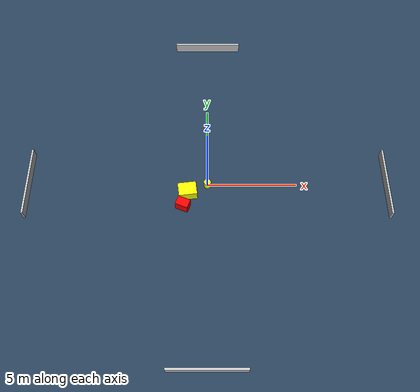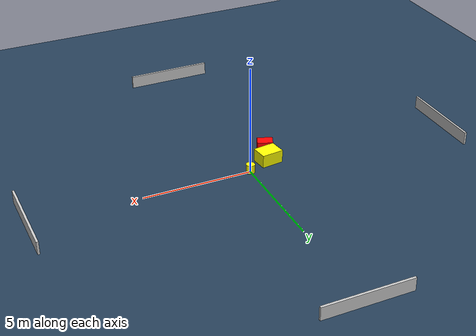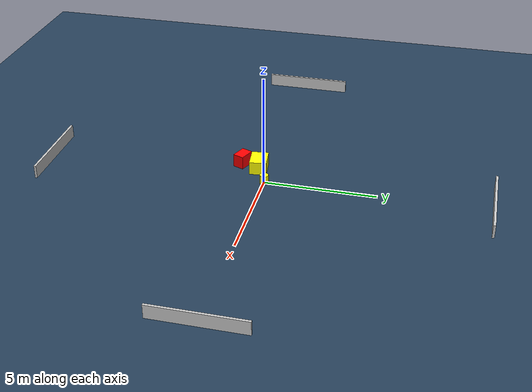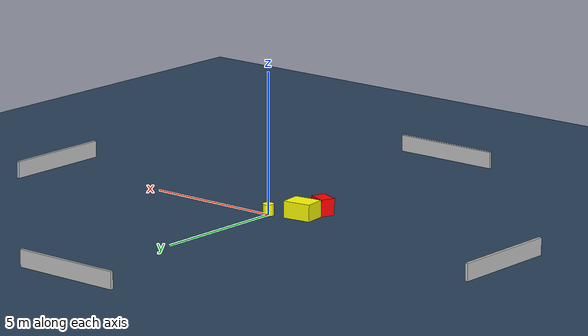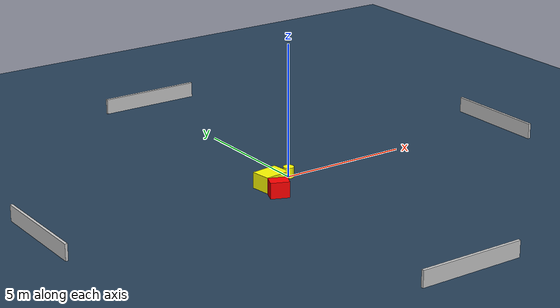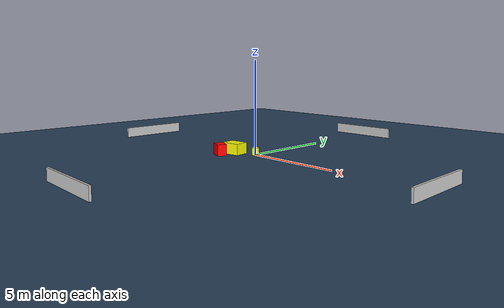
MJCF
<?xml version="1.0" ?>
<mujoco model="generated_environment">
  <option timestep="0.01" integrator="RK4" cone="elliptic"/>
  <default>
    <geom density="1"/>
  </default>
  <asset>
    <texture builtin="gradient" height="3072" name="skybox" rgb1="0.3 0.5 0.7" rgb2="0 0 0" type="skybox" width="512"/>
    <texture builtin="checker" height="300" name="groundplane" rgb1="0.2 0.3 0.4" rgb2="0.1 0.2 0.3" type="2d" width="300"/>
    <material name="groundplane" reflectance="0.2" texrepeat="5 5" texture="groundplane"/>
  </asset>
  <worldbody>
    <light dir="0 0 -1" directional="true" pos="0 0 1.5"/>
    <geom condim="3" friction="0.5 0.005 0.001" material="groundplane" name="floor" pos="0 0 0" size="0 0 0.05" type="plane"/>
    <body name="walls">
      <geom name="wall_1" condim="4" pos="-10.0 0.0 0.3" rgba="0.800000011920929 0.800000011920929 0.800000011920929 1.0" size="0.05 2.0 0.3" type="box"/>
      <geom name="wall_2" condim="4" pos="10.0 0.0 0.3" rgba="0.800000011920929 0.800000011920929 0.800000011920929 1.0" size="0.05 2.0 0.3" type="box"/>
      <geom name="wall_3" condim="4" pos="0.0 -10.0 0.3" rgba="0.800000011920929 0.800000011920929 0.800000011920929 1.0" size="2.0 0.05 0.3" type="box"/>
      <geom name="wall_4" condim="4" pos="0.0 10.0 0.3" rgba="0.800000011920929 0.800000011920929 0.800000011920929 1.0" size="2.0 0.05 0.3" type="box"/>
    </body>
    <body name="robot">
      <joint name="joint_x" type="slide" pos="0 0 0" axis="1 0 0"/>
      <joint name="joint_y" type="slide" pos="0 0 0" axis="0 1 0"/>
      <geom name="robot" type="cylinder" pos="0.0 0.0 0.2" size="0.2 0.2 0.0" mass="5.0" friction="1.0 0.005 0.0001" condim="4" rgba="1.0 1.0 0.0 1.0"/>
    </body>
    <body name="obstacle_1_movable">
      <geom name="obstacle_1_movable" condim="4" pos="-1.10542438608687 -0.4960994102642271 0.3" euler="0 0 277.1583384008139" friction="0.0 0.005 0.001" rgba="1.0 1.0 0.0 1.0" size="0.3849293948544863 0.5076458873527008 0.3" type="box" mass="0.1"/>
      <joint type="free"/>
    </body>
    <body name="obstacle_2_static">
      <geom name="obstacle_2_static" condim="4" pos="-1.338091748814347 -1.3184174087865332 0.3" euler="0 0 337.6705695177481" friction="0.0 0.005 0.001" rgba="1.0 0.0 0.0 1.0" size="0.35339717266642756 0.2524114392234075 0.3" type="box"/>
    </body>
  </worldbody>
  <actuator>
    <motor name="actuator_x" joint="joint_x" gear="1" ctrlrange="-1 1"/>
    <motor name="actuator_y" joint="joint_y" gear="1" ctrlrange="-1 1"/>
  </actuator>
</mujoco>
